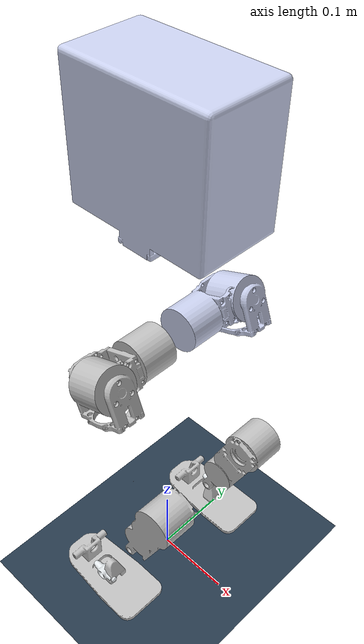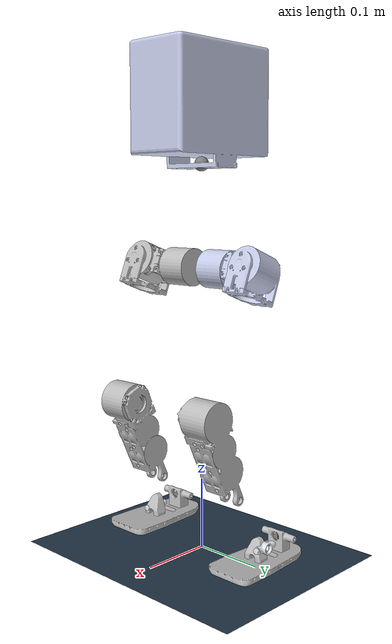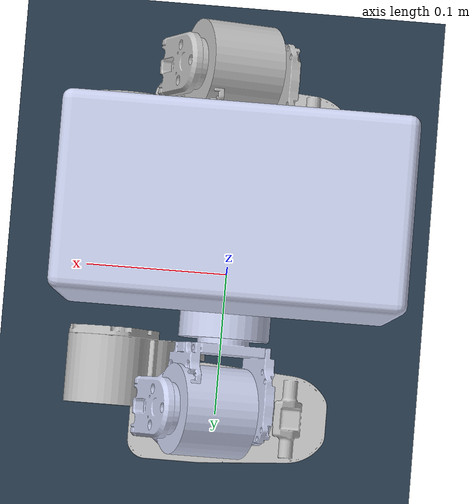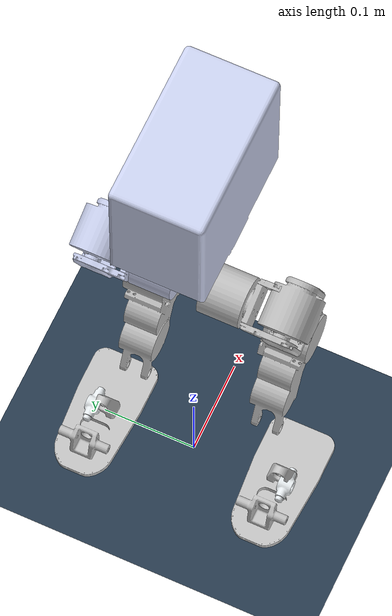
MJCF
<mujoco model="pi_12dof_release_v1">
  <compiler angle="radian" meshdir="../meshes/" eulerseq="zyx"/>
  <option timestep='0.001' iterations='50' solver='PGS' gravity='0 0 -9.81'>
  </option>
  <size njmax="500" nconmax="100" />

  <visual>
    <quality shadowsize='4096'/>
    <map znear='0.05'/>
  </visual>

  <default>
    <joint limited='true'/>
    <motor ctrllimited='true'/>
    <geom condim='4' contype="1" conaffinity="15" solref='0.001 2' friction='0.90 0.2 0.2'/>
    <equality solref='0.001 2'/>
    <default class='visualgeom'>
      <geom material='visualgeom' condim='1' contype='0' conaffinity='0'/>
    </default>
    <default class='visualgeom2'>
      <geom material='visualgeom2' condim='1' contype='0' conaffinity='0'/>
    </default>
    <default class='obstacle'>
      <geom material='obstacle' condim='3' contype='1' conaffinity='15'/>
    </default>
  </default>
  <asset>
    <texture type="skybox" builtin="gradient" rgb1="0.3 0.5 0.7" rgb2="0 0 0" width="512" height="512"/>
    <texture name="texplane" type="2d" builtin="checker" rgb1=".2 .3 .4" rgb2=".1 0.15 0.2" width="512" height="512" mark="cross" markrgb=".8 .8 .8"/>
    <texture name="texplane2" type="2d" builtin="checker" rgb1="1 0.3137 0.1843" rgb2="0.0 0.30196 0.38039" width="512" height="512" mark="cross" markrgb=".8 .8 .8"/>

    <material name="matplane" reflectance="0." texture="texplane" texrepeat="1 1" texuniform="true"/>
    <material name="matplane2" reflectance="0.1" texture="texplane2" texrepeat="1 1" texuniform="true"/>

    <material name='obstacle' rgba='0.9 0.6 0.2 1'/>
    <material name='visualgeom' rgba='0.5 0.9 0.2 1'/>
    <material name='visualgeom2' rgba='0.5 0.9 0.2 1'/>

    <mesh name="base_link" file="base_link.STL"/>
    <mesh name="r_hip_pitch_link" file="r_hip_pitch_link.STL"/>
    <mesh name="r_hip_roll_link" file="r_hip_roll_link.STL"/>
    <mesh name="r_calf_link" file="r_calf_link.STL"/>
    <mesh name="r_ankle_pitch_link" file="r_ankle_pitch_link.STL"/>
    <mesh name="r_ankle_roll_link" file="r_ankle_roll_link.STL"/>
    <mesh name="l_hip_pitch_link" file="l_hip_pitch_link.STL"/>
    <mesh name="l_hip_roll_link" file="l_hip_roll_link.STL"/>
    <mesh name="l_calf_link" file="l_calf_link.STL"/>
    <mesh name="l_ankle_pitch_link" file="l_ankle_pitch_link.STL"/>
    <mesh name="l_ankle_roll_link" file="l_ankle_roll_link.STL"/>

    <hfield name='hf0' nrow='200' ncol='200' size="10 5 0.2 .1"/>
  </asset>
  <worldbody>
    <light directional="true" diffuse=".4 .4 .4" specular="0.1 0.1 0.1" pos="0 0 5.0" dir="0 0 -1" castshadow="false"/>
    <light directional="true" diffuse=".6 .6 .6" specular="0.2 0.2 0.2" pos="0 0 4" dir="0 0 -1"/>
    <geom name="ground" type="plane" size="0 0 1" pos="0.001 0 0" quat="1 0 0 0" material="matplane" condim="1" conaffinity='15'/>

    <body name="base_link" pos="0.0 0.0 0.54">
      <inertial pos="-0.00019303 0.00036959 0.0153481" quat="0.999534 0.030491 -0.00117352 0.000192511" mass="6.73315" diaginertia="0.164092 0.0850344 0.0843526"/>
      <joint type='slide' axis='1 0 0' limited='false' />
      <joint type='slide' axis='0 1 0' limited='false' />
      <joint type='slide' axis='0 0 1' limited='false' />
      <joint type='ball' limited='false' />
      <site name='imu' size='0.01' pos='0.0 0 0.0'/>
      <geom type="mesh" contype="0" conaffinity="0" group="1" density="0" rgba="0.792157 0.819608 0.933333 1" mesh="base_link"/>
      <geom type="mesh" rgba="0.792157 0.819608 0.933333 1" mesh="base_link"/>
      <body name="r_hip_pitch_link" pos="0 -0.0575 -0.141" quat="0.982936 0 -0.183947 0">
        <inertial pos="-0.00065082 -0.0400035 0" quat="0.507768 0.492109 -0.507768 0.492109" mass="0.68046" diaginertia="0.00048659 0.000475612 0.000452928"/>
        <joint name="r_hip_pitch_joint" pos="0 0 0" axis="0 1 0" range="-1 1.8"/>
        <geom type="mesh" contype="0" conaffinity="0" group="1" density="0" rgba="0.752941 0.752941 0.752941 1" mesh="r_hip_pitch_link"/>
        <geom size="5e-05 5e-05 5e-05" type="box" rgba="0.752941 0.752941 0.752941 1"/>
        <body name="r_hip_roll_link" pos="0.02875 -0.0419959 0">
          <inertial pos="-0.0282065 -3.55e-06 -0.0783923" quat="0.706924 0.0147684 0.0147895 0.706981" mass="0.801723" diaginertia="0.00168848 0.00145491 0.000712253"/>
          <joint name="r_hip_roll_joint" pos="0 0 0" axis="1 0 0" range="-0.5 0.12"/>
          <geom type="mesh" contype="0" conaffinity="0" group="1" density="0" rgba="0.752941 0.752941 0.752941 1" mesh="r_hip_roll_link"/>
          <geom size="5e-05 5e-05 5e-05" type="box" rgba="0.752941 0.752941 0.752941 1"/>
          <body name="r_thigh_link" pos="-0.02875 0 -0.127">
            <inertial pos="0 0.00195775 -0.0384354" quat="0.905558 0.424222 0 0" mass="0.216481" diaginertia="0.00040135 0.000265282 0.000229738"/>
            <joint name="r_thigh_joint" pos="0 0 0" axis="0 0 1" range="-0.6 0.3"/>
            <geom size="5e-05 5e-05 5e-05" type="box" contype="0" conaffinity="0" group="1" density="0" rgba="0.752941 0.752941 0.752941 1"/>
            <geom size="5e-05 5e-05 5e-05" type="box" rgba="0.752941 0.752941 0.752941 1"/>
            <body name="r_calf_link" pos="0 0 -0.073" quat="0.921061 0 0.389418 0">
              <inertial pos="0.00112598 -0.00049951 -0.0592864" quat="0.717294 -9.72982e-05 -0.0134173 0.696642" mass="1.4833" diaginertia="0.00571085 0.00567824 0.000823883"/>
              <joint name="r_calf_joint" pos="0 0 0" axis="0 1 0" range="-0.75 1.4"/>
              <geom type="mesh" contype="0" conaffinity="0" group="1" density="0" rgba="0.752941 0.752941 0.752941 1" mesh="r_calf_link"/>
              <geom size="5e-05 5e-05 5e-05" type="box" rgba="0.752941 0.752941 0.752941 1"/>
              <body name="r_ankle_pitch_link" pos="0 0 -0.2" quat="0.976976 0 -0.213347 0">
                <inertial pos="0 0 0" quat="0.5 0.5 0.5 0.5" mass="0.0089231" diaginertia="1.02e-06 9.9e-07 2.3e-07"/>
                <joint name="r_ankle_pitch_joint" pos="0 0 0" axis="0 1 0" range="-0.6 1.15"/>
                <geom type="mesh" contype="0" conaffinity="0" group="1" density="0" rgba="0.898039 0.917647 0.929412 1" mesh="r_ankle_pitch_link"/>
                <geom size="5e-05 5e-05 5e-05" type="box" rgba="0.898039 0.917647 0.929412 1"/>
                <body name="r_ankle_roll_link">
                  <inertial pos="0.0185393 1.46e-06 -0.022799" quat="-1.74325e-05 0.716891 1.45942e-05 0.697186" mass="0.348458" diaginertia="0.00080104 0.00063628 0.00019538"/>
                  <joint name="r_ankle_roll_joint" pos="0 0 0" axis="1 0 0" range="-0.05 0.05"/>
                  <geom type="mesh" contype="0" conaffinity="0" group="1" density="0" rgba="0.752941 0.752941 0.752941 1" mesh="r_ankle_roll_link"/>
                  <geom type="mesh" rgba="0.752941 0.752941 0.752941 1" mesh="r_ankle_roll_link"/>
                </body>
              </body>
            </body>
          </body>
        </body>
      </body>
      <body name="l_hip_pitch_link" pos="0 0.0575 -0.141" quat="0.982936 0 -0.183947 0">
        <inertial pos="-0.00065082 0.040007 0" quat="0.492113 0.507765 -0.492113 0.507765" mass="0.68046" diaginertia="0.0004866 0.000475622 0.000452928"/>
        <joint name="l_hip_pitch_joint" pos="0 0 0" axis="0 1 0" range="-1 1.8"/>
        <geom type="mesh" contype="0" conaffinity="0" group="1" density="0" rgba="0.792157 0.819608 0.933333 1" mesh="l_hip_pitch_link"/>
        <geom size="5e-05 5e-05 5e-05" type="box" rgba="0.792157 0.819608 0.933333 1"/>
        <body name="l_hip_roll_link" pos="0.02875 0.042 0">
          <inertial pos="-0.0282065 0 -0.0783923" quat="0.706952 0.0147742 0.0147742 0.706952" mass="0.801723" diaginertia="0.00168848 0.00145491 0.000712254"/>
          <joint name="l_hip_roll_joint" pos="0 0 0" axis="1 0 0" range="-0.12 0.5"/>
          <geom type="mesh" contype="0" conaffinity="0" group="1" density="0" rgba="0.792157 0.819608 0.933333 1" mesh="l_hip_roll_link"/>
          <geom size="5e-05 5e-05 5e-05" type="box" rgba="0.792157 0.819608 0.933333 1"/>
          <body name="l_thigh_link" pos="-0.02875 0 -0.127">
            <inertial pos="0 -0.00195775 -0.0384354" quat="0.424222 0.905558 0 0" mass="0.216481" diaginertia="0.00040135 0.000265282 0.000229738"/>
            <joint name="l_thigh_joint" pos="0 0 0" axis="0 0 1" range="-0.3 0.6"/>
            <geom size="5e-05 5e-05 5e-05" type="box" contype="0" conaffinity="0" group="1" density="0" rgba="0.752941 0.752941 0.752941 1"/>
            <geom size="5e-05 5e-05 5e-05" type="box" rgba="0.752941 0.752941 0.752941 1"/>
            <body name="l_calf_link" pos="0 0 -0.073" quat="0.921061 0 0.389418 0">
              <inertial pos="0.00111832 0.00049709 -0.0596686" quat="0.697481 -0.013161 -2.69476e-05 0.716482" mass="1.48758" diaginertia="0.00578954 0.00575665 0.000824302"/>
              <joint name="l_calf_joint" pos="0 0 0" axis="0 1 0" range="-0.75 1.4"/>
              <geom type="mesh" contype="0" conaffinity="0" group="1" density="0" rgba="0.752941 0.752941 0.752941 1" mesh="l_calf_link"/>
              <geom size="5e-05 5e-05 5e-05" type="box" rgba="0.752941 0.752941 0.752941 1"/>
              <body name="l_ankle_pitch_link" pos="0 0 -0.2" quat="0.976976 0 -0.213347 0">
                <inertial pos="0 0 0" quat="0.5 0.5 0.5 0.5" mass="0.0089231" diaginertia="1.02e-06 9.9e-07 2.3e-07"/>
                <joint name="l_ankle_pitch_joint" pos="0 0 0" axis="0 1 0" range="-0.6 1.15"/>
                <geom type="mesh" contype="0" conaffinity="0" group="1" density="0" rgba="0.898039 0.917647 0.929412 1" mesh="l_ankle_pitch_link"/>
                <geom size="5e-05 5e-05 5e-05" type="box" rgba="0.898039 0.917647 0.929412 1"/>
                <body name="l_ankle_roll_link">
                  <inertial pos="0.0185393 1.46e-06 -0.022799" quat="-1.74325e-05 0.716891 1.45942e-05 0.697186" mass="0.348458" diaginertia="0.00080104 0.00063628 0.00019538"/>
                  <joint name="l_ankle_roll_joint" pos="0 0 0" axis="1 0 0" range="-0.05 0.05"/>
                  <geom type="mesh" contype="0" conaffinity="0" group="1" density="0" rgba="0.752941 0.752941 0.752941 1" mesh="l_ankle_roll_link"/>
                  <geom type="mesh" rgba="0.752941 0.752941 0.752941 1" mesh="l_ankle_roll_link"/>
                </body>
              </body>
            </body>
          </body>
        </body>
      </body>
    </body>

  </worldbody>
  <actuator>
    <motor name="r_hip_pitch_joint" joint="r_hip_pitch_joint" gear="1" ctrllimited="true" ctrlrange="-200 200"/>
    <motor name="r_hip_roll_joint" joint="r_hip_roll_joint" gear="1" ctrllimited="true" ctrlrange="-200 200"/>
    <motor name="r_thigh_joint" joint="r_thigh_joint" gear="1" ctrllimited="true" ctrlrange="-200 200"/>
    <motor name="r_calf_joint" joint="r_calf_joint" gear="1" ctrllimited="true" ctrlrange="-200 200"/>
    <motor name="r_ankle_pitch_joint" joint="r_ankle_pitch_joint" gear="1" ctrllimited="true" ctrlrange="-200 200"/>
    <motor name="r_ankle_roll_joint" joint="r_ankle_roll_joint" gear="1" ctrllimited="true" ctrlrange="-200 200"/>
    <motor name="l_hip_pitch_joint" joint="l_hip_pitch_joint" gear="1" ctrllimited="true" ctrlrange="-200 200"/>
    <motor name="l_hip_roll_joint" joint="l_hip_roll_joint" gear="1" ctrllimited="true" ctrlrange="-200 200"/>
    <motor name="l_thigh_joint" joint="l_thigh_joint" gear="1" ctrllimited="true" ctrlrange="-200 200"/>
    <motor name="l_calf_joint" joint="l_calf_joint" gear="1" ctrllimited="true" ctrlrange="-200 200"/>
    <motor name="l_ankle_pitch_joint" joint="l_ankle_pitch_joint" gear="1" ctrllimited="true" ctrlrange="-200 200"/>
    <motor name="l_ankle_roll_joint" joint="l_ankle_roll_joint" gear="1" ctrllimited="true" ctrlrange="-200 200"/>
  </actuator>

  <sensor>
    <!-- Position sensors -->
    <actuatorpos name="r_hip_pitch_joint_p" actuator="r_hip_pitch_joint" user="13"/>
    <actuatorpos name="r_hip_roll_joint_p" actuator="r_hip_roll_joint" user="13"/>
    <actuatorpos name="r_thigh_joint_p" actuator="r_thigh_joint" user="13"/>
    <actuatorpos name="r_calf_joint_p" actuator="r_calf_joint" user="13"/>
    <actuatorpos name="r_ankle_pitch_joint_p" actuator="r_ankle_pitch_joint" user="13"/>
    <actuatorpos name="r_ankle_roll_joint_p" actuator="r_ankle_roll_joint" user="13"/>
    <actuatorpos name="l_hip_pitch_joint_p" actuator="l_hip_pitch_joint" user="13"/>
    <actuatorpos name="l_hip_roll_joint_p" actuator="l_hip_roll_joint" user="13"/>
    <actuatorpos name="l_thigh_joint_p" actuator="l_thigh_joint" user="13"/>
    <actuatorpos name="l_calf_joint_p" actuator="l_calf_joint" user="13"/>
    <actuatorpos name="l_ankle_pitch_joint_p" actuator="l_ankle_pitch_joint" user="13"/>
    <actuatorpos name="l_ankle_roll_joint_p" actuator="l_ankle_roll_joint" user="13"/>

    <!-- Velocity sensors -->
    <actuatorvel name="r_hip_pitch_joint_v" actuator="r_hip_pitch_joint" user="13" noise="1e-3"/>
    <actuatorvel name="r_hip_roll_joint_v" actuator="r_hip_roll_joint" user="13" noise="1e-3"/>
    <actuatorvel name="r_thigh_joint_v" actuator="r_thigh_joint" user="13" noise="1e-3"/>
    <actuatorvel name="r_calf_joint_v" actuator="r_calf_joint" user="13" noise="1e-3"/>
    <actuatorvel name="r_ankle_pitch_joint_v" actuator="r_ankle_pitch_joint" user="13" noise="1e-3"/>
    <actuatorvel name="r_ankle_roll_joint_v" actuator="r_ankle_roll_joint" user="13" noise="1e-3"/>
    <actuatorvel name="l_hip_pitch_joint_v" actuator="l_hip_pitch_joint" user="13" noise="1e-3"/>
    <actuatorvel name="l_hip_roll_joint_v" actuator="l_hip_roll_joint" user="13" noise="1e-3"/>
    <actuatorvel name="l_thigh_joint_v" actuator="l_thigh_joint" user="13" noise="1e-3"/>
    <actuatorvel name="l_calf_joint_v" actuator="l_calf_joint" user="13" noise="1e-3"/>
    <actuatorvel name="l_ankle_pitch_joint_v" actuator="l_ankle_pitch_joint" user="13" noise="1e-3"/>
    <actuatorvel name="l_ankle_roll_joint_v" actuator="l_ankle_roll_joint" user="13" noise="1e-3"/>

    <!-- Force sensors -->
    <actuatorfrc name="r_hip_pitch_joint_f" actuator="r_hip_pitch_joint" user="13" noise="1e-3"/>
    <actuatorfrc name="r_hip_roll_joint_f" actuator="r_hip_roll_joint" user="13" noise="1e-3"/>
    <actuatorfrc name="r_thigh_joint_f" actuator="r_thigh_joint" user="13" noise="1e-3"/>
    <actuatorfrc name="r_calf_joint_f" actuator="r_calf_joint" user="13" noise="1e-3"/>
    <actuatorfrc name="r_ankle_pitch_joint_f" actuator="r_ankle_pitch_joint" user="13" noise="1e-3"/>
    <actuatorfrc name="r_ankle_roll_joint_f" actuator="r_ankle_roll_joint" user="13" noise="1e-3"/>
    <actuatorfrc name="l_hip_pitch_joint_f" actuator="l_hip_pitch_joint" user="13" noise="1e-3"/>
    <actuatorfrc name="l_hip_roll_joint_f" actuator="l_hip_roll_joint" user="13" noise="1e-3"/>
    <actuatorfrc name="l_thigh_joint_f" actuator="l_thigh_joint" user="13" noise="1e-3"/>
    <actuatorfrc name="l_calf_joint_f" actuator="l_calf_joint" user="13" noise="1e-3"/>
    <actuatorfrc name="l_ankle_pitch_joint_f" actuator="l_ankle_pitch_joint" user="13" noise="1e-3"/>
    <actuatorfrc name="l_ankle_roll_joint_f" actuator="l_ankle_roll_joint" user="13" noise="1e-3"/>

    <framequat name='orientation' objtype='site' noise='0.001' objname='imu'/>
    <framepos name='position' objtype='site' noise='0.001' objname='imu'/>
    <gyro name='angular-velocity' site='imu' noise='0.005' cutoff='34.9'/>
    <velocimeter name='linear-velocity' site='imu' noise='0.001' cutoff='30'/>
    <accelerometer name='linear-acceleration' site='imu' noise='0.005' cutoff='157'/>
    <magnetometer name='magnetometer' site='imu'/>

  </sensor>
</mujoco>
